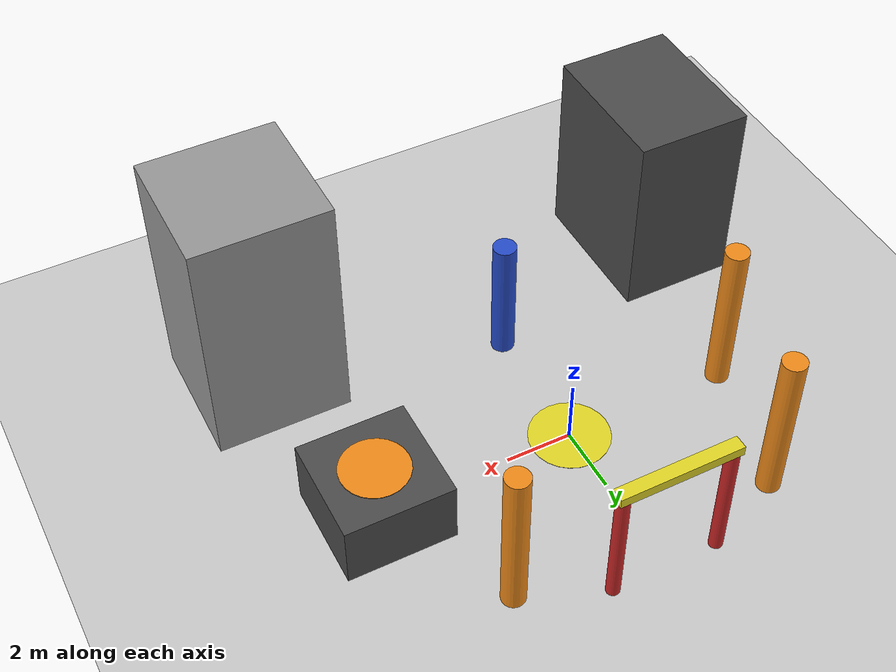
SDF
<?xml version="1.0" ?>
<sdf version="1.6">
  <world name="default">
    <!-- Atmospheric Physics & Lighting -->
    <include>
      <uri>model://ground_plane</uri>
    </include>
    <include>
      <uri>model://sun</uri>
    </include>

    <!-- Gazebo ROS State Bridge: advertises /gazebo/set_entity_state & /gazebo/get_entity_state -->
    <plugin name="gazebo_ros_state" filename="libgazebo_ros_state.so">
      <ros>
        <namespace>/gazebo</namespace>
      </ros>
    </plugin>

    <!-- 1. Central Takeoff Helipad (Origin) -->
    <model name="takeoff_helipad">
      <static>true</static>
      <pose>0 0 0.005 0 0 0</pose>
      <link name="pad_link">
        <visual name="pad_visual">
          <geometry>
            <cylinder>
              <radius>1.2</radius>
              <length>0.01</length>
            </cylinder>
          </geometry>
          <material>
            <script>
              <uri>file://media/materials/scripts/gazebo.material</uri>
              <name>Gazebo/Yellow</name>
            </script>
          </material>
        </visual>
        <collision name="pad_collision">
          <geometry>
            <cylinder>
              <radius>1.2</radius>
              <length>0.01</length>
            </cylinder>
          </geometry>
        </collision>
      </link>
    </model>

    <!-- 2. Elevated Rooftop Landing Station (6m East, 2.0m High) -->
    <model name="rooftop_station">
      <static>true</static>
      <pose>6.0 0 1.0 0 0 0</pose>
      <link name="building_link">
        <visual name="structure_visual">
          <geometry>
            <box>
              <size>3.2 3.2 2.0</size>
            </box>
          </geometry>
          <material>
            <script>
              <uri>file://media/materials/scripts/gazebo.material</uri>
              <name>Gazebo/DarkGrey</name>
            </script>
          </material>
        </visual>
        <collision name="structure_collision">
          <geometry>
            <box>
              <size>3.2 3.2 2.0</size>
            </box>
          </geometry>
        </collision>
      </link>
      <!-- Rooftop Landing Target -->
      <link name="roof_pad_link">
        <pose>0 0 1.01 0 0 0</pose>
        <visual name="roof_pad_visual">
          <geometry>
            <cylinder>
              <radius>1.0</radius>
              <length>0.02</length>
            </cylinder>
          </geometry>
          <material>
            <script>
              <uri>file://media/materials/scripts/gazebo.material</uri>
              <name>Gazebo/Orange</name>
            </script>
          </material>
        </visual>
      </link>
    </model>

    <!-- 3. Fly-Through Inspection Gate / Arch (5m North) -->
    <model name="inspection_gate">
      <static>true</static>
      <pose>0 5.0 0 0 0 0</pose>
      <!-- Left Pillar -->
      <link name="gate_pillar_left">
        <pose>-1.6 0 2.0 0 0 0</pose>
        <visual name="left_p_vis">
          <geometry><cylinder><radius>0.2</radius><length>4.0</length></cylinder></geometry>
          <material><script><uri>file://media/materials/scripts/gazebo.material</uri><name>Gazebo/Red</name></script></material>
        </visual>
        <collision name="left_p_col">
          <geometry><cylinder><radius>0.2</radius><length>4.0</length></cylinder></geometry>
        </collision>
      </link>
      <!-- Right Pillar -->
      <link name="gate_pillar_right">
        <pose>1.6 0 2.0 0 0 0</pose>
        <visual name="right_p_vis">
          <geometry><cylinder><radius>0.2</radius><length>4.0</length></cylinder></geometry>
          <material><script><uri>file://media/materials/scripts/gazebo.material</uri><name>Gazebo/Red</name></script></material>
        </visual>
        <collision name="right_p_col">
          <geometry><cylinder><radius>0.2</radius><length>4.0</length></cylinder></geometry>
        </collision>
      </link>
      <!-- Top Crossbar -->
      <link name="gate_crossbar">
        <pose>0 0 4.0 0 0 0</pose>
        <visual name="bar_vis">
          <geometry><box><size>3.6 0.4 0.3</size></box></geometry>
          <material><script><uri>file://media/materials/scripts/gazebo.material</uri><name>Gazebo/Yellow</name></script></material>
        </visual>
        <collision name="bar_col">
          <geometry><box><size>3.6 0.4 0.3</size></box></geometry>
        </collision>
      </link>
    </model>

    <!-- 4. Industrial Tower A (7m East, -6m South, 7.5m Tall) -->
    <model name="industrial_tower_a">
      <static>true</static>
      <pose>7.0 -6.0 3.75 0 0 0</pose>
      <link name="tower_link">
        <visual name="tower_visual">
          <geometry>
            <box>
              <size>4.0 4.0 7.5</size>
            </box>
          </geometry>
          <material>
            <script>
              <uri>file://media/materials/scripts/gazebo.material</uri>
              <name>Gazebo/Grey</name>
            </script>
          </material>
        </visual>
        <collision name="tower_collision">
          <geometry>
            <box>
              <size>4.0 4.0 7.5</size>
            </box>
          </geometry>
        </collision>
      </link>
    </model>

    <!-- 5. Industrial Tower B (-6m West, -6m South, 6.0m Tall) -->
    <model name="industrial_tower_b">
      <static>true</static>
      <pose>-6.0 -6.0 3.0 0 0 0</pose>
      <link name="tower_b_link">
        <visual name="tower_b_visual">
          <geometry>
            <box>
              <size>3.5 4.5 6.0</size>
            </box>
          </geometry>
          <material>
            <script>
              <uri>file://media/materials/scripts/gazebo.material</uri>
              <name>Gazebo/DarkGrey</name>
            </script>
          </material>
        </visual>
        <collision name="tower_b_collision">
          <geometry>
            <box>
              <size>3.5 4.5 6.0</size>
            </box>
          </geometry>
        </collision>
      </link>
    </model>

    <!-- 6. Slalom Navigation Obstacle Columns -->
    <model name="slalom_pylon_1">
      <static>true</static>
      <pose>4.0 4.0 2.5 0 0 0</pose>
      <link name="pylon_link">
        <visual name="p_vis"><geometry><cylinder><radius>0.35</radius><length>5.0</length></cylinder></geometry>
        <material><script><uri>file://media/materials/scripts/gazebo.material</uri><name>Gazebo/Orange</name></script></material></visual>
        <collision name="p_col"><geometry><cylinder><radius>0.35</radius><length>5.0</length></cylinder></geometry></collision>
      </link>
    </model>

    <model name="slalom_pylon_2">
      <static>true</static>
      <pose>-4.0 4.0 2.5 0 0 0</pose>
      <link name="pylon_link">
        <visual name="p_vis"><geometry><cylinder><radius>0.35</radius><length>5.0</length></cylinder></geometry>
        <material><script><uri>file://media/materials/scripts/gazebo.material</uri><name>Gazebo/Orange</name></script></material></visual>
        <collision name="p_col"><geometry><cylinder><radius>0.35</radius><length>5.0</length></cylinder></geometry></collision>
      </link>
    </model>

    <model name="slalom_pylon_3">
      <static>true</static>
      <pose>-5.0 0 2.5 0 0 0</pose>
      <link name="pylon_link">
        <visual name="p_vis"><geometry><cylinder><radius>0.35</radius><length>5.0</length></cylinder></geometry>
        <material><script><uri>file://media/materials/scripts/gazebo.material</uri><name>Gazebo/Orange</name></script></material></visual>
        <collision name="p_col"><geometry><cylinder><radius>0.35</radius><length>5.0</length></cylinder></geometry></collision>
      </link>
    </model>

    <model name="slalom_pylon_4">
      <static>true</static>
      <pose>0 -4.0 2.0 0 0 0</pose>
      <link name="pylon_link">
        <visual name="p_vis"><geometry><cylinder><radius>0.35</radius><length>4.0</length></cylinder></geometry>
        <material><script><uri>file://media/materials/scripts/gazebo.material</uri><name>Gazebo/Blue</name></script></material></visual>
        <collision name="p_col"><geometry><cylinder><radius>0.35</radius><length>4.0</length></cylinder></geometry></collision>
      </link>
    </model>

  </world>
</sdf>
